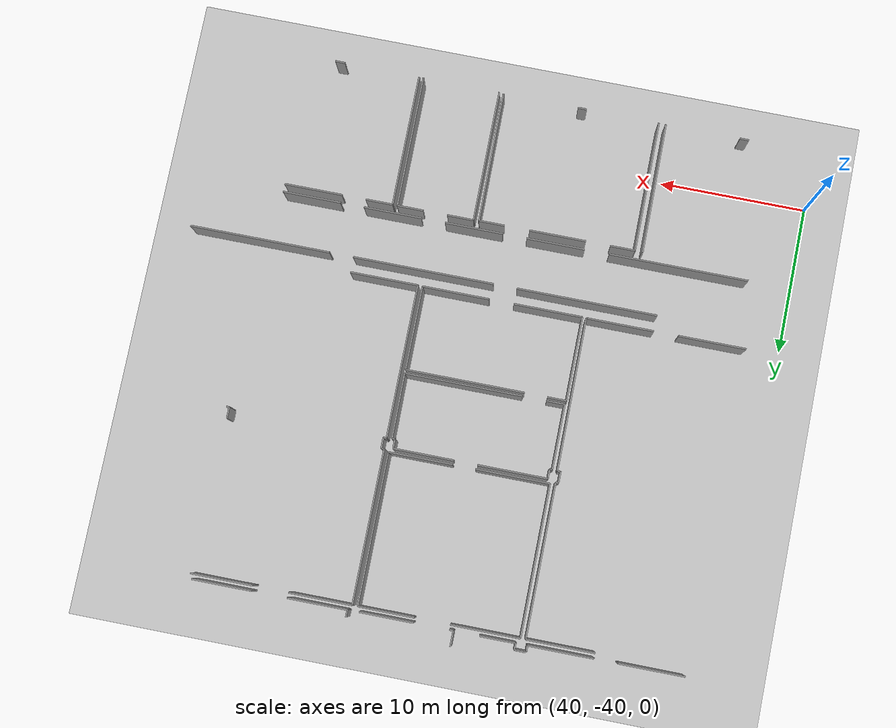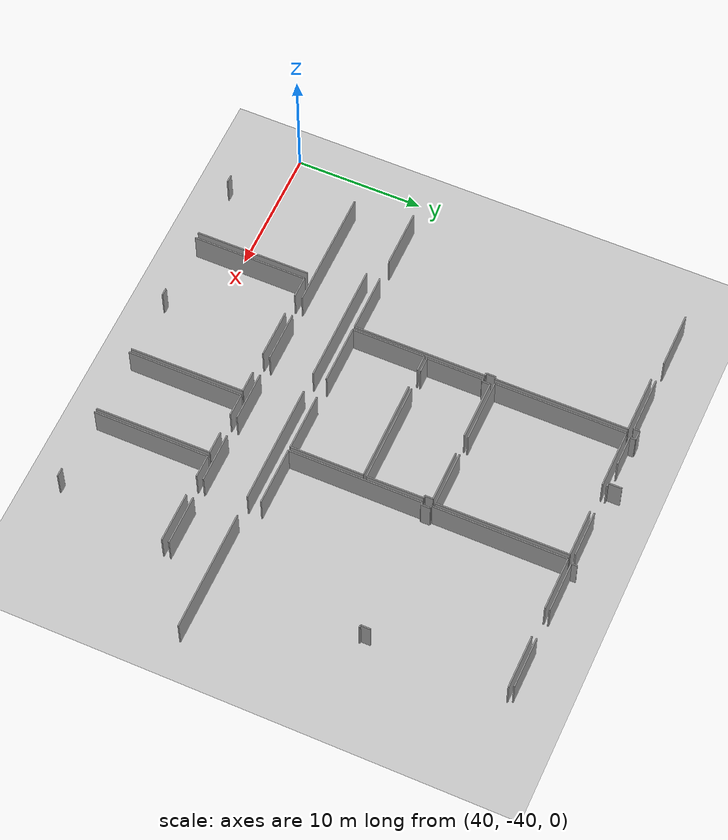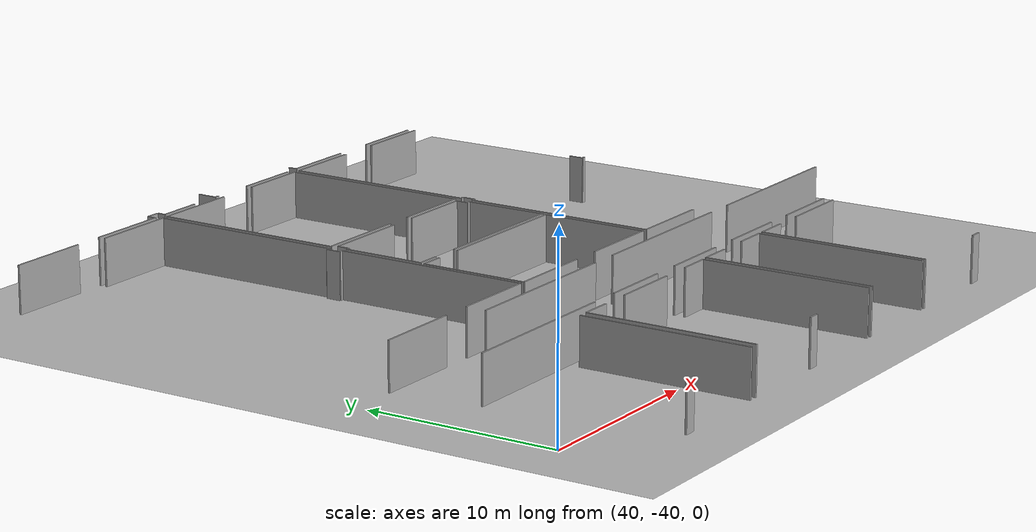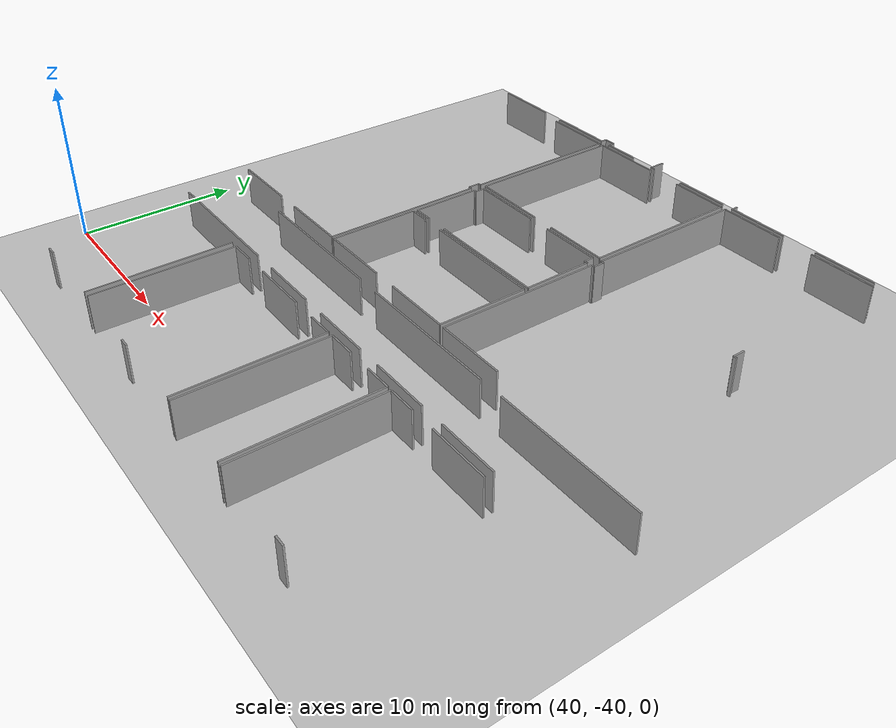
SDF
<sdf version="1.6">
 <world name="default">
  <model name="ground_plane">
   <static>1</static>
   <link name="link">
    <collision name="collision">
     <geometry><plane><normal>0 0 1</normal><size>100 100</size></plane></geometry>
     <surface><friction><ode><mu>100</mu><mu2>50</mu2></ode></friction></surface>
    </collision>
    <visual name="visual">
     <cast_shadows>0</cast_shadows>
     <geometry><plane><normal>0 0 1</normal><size>100 100</size></plane></geometry>
     <material>
      <script><uri>file://media/materials/scripts/gazebo.material</uri><name>Gazebo/Grey</name></script>
     </material>
    </visual>
   </link>
  </model>
  <model name="50015848">
   <static>1</static>
   <link name="Wall_598">
    <collision name="Wall_598_Collision">
     <geometry><box><size>4.02895038979 0.1 2.5</size></box></geometry>
     <pose>2.01447519489 0 1.25 0 0 0</pose>
    </collision>
    <visual name="Wall_598_Visual">
     <pose>2.01447519489 0 1.25 0 0 0</pose>
     <geometry><box><size>4.02895038979 0.1 2.5</size></box></geometry>
     <material>
      <script><uri>file://media/materials/scripts/gazebo.material</uri><name>Gazebo/Grey</name></script>
      <ambient>1 1 1 1</ambient>
     </material>
    </visual>
    <pose>207.334521627 -51.2421899283 0 0 0 3.14159265359</pose>
   </link>
   <link name="Wall_599">
    <collision name="Wall_599_Collision">
     <geometry><box><size>4.02057735856 0.1 2.5</size></box></geometry>
     <pose>2.01028867928 0 1.25 0 0 0</pose>
    </collision>
    <visual name="Wall_599_Visual">
     <pose>2.01028867928 0 1.25 0 0 0</pose>
     <geometry><box><size>4.02057735856 0.1 2.5</size></box></geometry>
     <material>
      <script><uri>file://media/materials/scripts/gazebo.material</uri><name>Gazebo/Grey</name></script>
      <ambient>1 1 1 1</ambient>
     </material>
    </visual>
    <pose>200.940824236 -51.2421899283 0 0 0 3.14159265359</pose>
   </link>
   <link name="Wall_600">
    <collision name="Wall_600_Collision">
     <geometry><box><size>0.468889748746 0.1 2.5</size></box></geometry>
     <pose>0.234444874373 0 1.25 0 0 0</pose>
    </collision>
    <visual name="Wall_600_Visual">
     <pose>0.234444874373 0 1.25 0 0 0</pose>
     <geometry><box><size>0.468889748746 0.1 2.5</size></box></geometry>
     <material>
      <script><uri>file://media/materials/scripts/gazebo.material</uri><name>Gazebo/Grey</name></script>
      <ambient>1 1 1 1</ambient>
     </material>
    </visual>
    <pose>196.920246878 -51.2421899283 0 0 0 1.57079632679</pose>
   </link>
   <link name="Wall_603">
    <collision name="Wall_603_Collision">
     <geometry><box><size>3.62602997799 0.1 2.5</size></box></geometry>
     <pose>1.81301498899 0 1.25 0 0 0</pose>
    </collision>
    <visual name="Wall_603_Visual">
     <pose>1.81301498899 0 1.25 0 0 0</pose>
     <geometry><box><size>3.62602997799 0.1 2.5</size></box></geometry>
     <material>
      <script><uri>file://media/materials/scripts/gazebo.material</uri><name>Gazebo/Grey</name></script>
      <ambient>1 1 1 1</ambient>
     </material>
    </visual>
    <pose>196.152719015 -51.2571598932 0 0 0 3.14159265359</pose>
   </link>
   <link name="Wall_604">
    <collision name="Wall_604_Collision">
     <geometry><box><size>0.275802574073 0.1 2.5</size></box></geometry>
     <pose>0.137901287036 0 1.25 0 0 0</pose>
    </collision>
    <visual name="Wall_604_Visual">
     <pose>0.137901287036 0 1.25 0 0 0</pose>
     <geometry><box><size>0.275802574073 0.1 2.5</size></box></geometry>
     <material>
      <script><uri>file://media/materials/scripts/gazebo.material</uri><name>Gazebo/Grey</name></script>
      <ambient>1 1 1 1</ambient>
     </material>
    </visual>
    <pose>190.141897506 -51.2571598932 0 0 0 3.14159265359</pose>
   </link>
   <link name="Wall_605">
    <collision name="Wall_605_Collision">
     <geometry><box><size>1.05474820646 0.1 2.5</size></box></geometry>
     <pose>0.527374103229 0 1.25 0 0 0</pose>
    </collision>
    <visual name="Wall_605_Visual">
     <pose>0.527374103229 0 1.25 0 0 0</pose>
     <geometry><box><size>1.05474820646 0.1 2.5</size></box></geometry>
     <material>
      <script><uri>file://media/materials/scripts/gazebo.material</uri><name>Gazebo/Grey</name></script>
      <ambient>1 1 1 1</ambient>
     </material>
    </visual>
    <pose>189.866094932 -51.2571598932 0 0 0 1.57079632679</pose>
   </link>
   <link name="Wall_608">
    <collision name="Wall_608_Collision">
     <geometry><box><size>2.4081345267 0.1 2.5</size></box></geometry>
     <pose>1.20406726335 0 1.25 0 0 0</pose>
    </collision>
    <visual name="Wall_608_Visual">
     <pose>1.20406726335 0 1.25 0 0 0</pose>
     <geometry><box><size>2.4081345267 0.1 2.5</size></box></geometry>
     <material>
      <script><uri>file://media/materials/scripts/gazebo.material</uri><name>Gazebo/Grey</name></script>
      <ambient>1 1 1 1</ambient>
     </material>
    </visual>
    <pose>188.13972813 -51.2470107644 0 0 0 3.14159265359</pose>
   </link>
   <link name="Wall_609">
    <collision name="Wall_609_Collision">
     <geometry><box><size>0.449860132319 0.1 2.5</size></box></geometry>
     <pose>0.22493006616 0 1.25 0 0 0</pose>
    </collision>
    <visual name="Wall_609_Visual">
     <pose>0.22493006616 0 1.25 0 0 0</pose>
     <geometry><box><size>0.449860132319 0.1 2.5</size></box></geometry>
     <material>
      <script><uri>file://media/materials/scripts/gazebo.material</uri><name>Gazebo/Grey</name></script>
      <ambient>1 1 1 1</ambient>
     </material>
    </visual>
    <pose>185.731593604 -51.2470107644 0 0 0 1.57079632679</pose>
   </link>
   <link name="Wall_610">
    <collision name="Wall_610_Collision">
     <geometry><box><size>0.783259012109 0.1 2.5</size></box></geometry>
     <pose>0.391629506055 0 1.25 0 0 0</pose>
    </collision>
    <visual name="Wall_610_Visual">
     <pose>0.391629506055 0 1.25 0 0 0</pose>
     <geometry><box><size>0.783259012109 0.1 2.5</size></box></geometry>
     <material>
      <script><uri>file://media/materials/scripts/gazebo.material</uri><name>Gazebo/Grey</name></script>
      <ambient>1 1 1 1</ambient>
     </material>
    </visual>
    <pose>185.731593604 -50.7971506321 0 0 0 3.14159265359</pose>
   </link>
   <link name="Wall_611">
    <collision name="Wall_611_Collision">
     <geometry><box><size>0.449860132319 0.1 2.5</size></box></geometry>
     <pose>0.22493006616 0 1.25 0 0 0</pose>
    </collision>
    <visual name="Wall_611_Visual">
     <pose>0.22493006616 0 1.25 0 0 0</pose>
     <geometry><box><size>0.449860132319 0.1 2.5</size></box></geometry>
     <material>
      <script><uri>file://media/materials/scripts/gazebo.material</uri><name>Gazebo/Grey</name></script>
      <ambient>1 1 1 1</ambient>
     </material>
    </visual>
    <pose>184.948334591 -50.7971506321 0 0 0 -1.57079632679</pose>
   </link>
   <link name="Wall_612">
    <collision name="Wall_612_Collision">
     <geometry><box><size>4.42476641146 0.1 2.5</size></box></geometry>
     <pose>2.21238320573 0 1.25 0 0 0</pose>
    </collision>
    <visual name="Wall_612_Visual">
     <pose>2.21238320573 0 1.25 0 0 0</pose>
     <geometry><box><size>4.42476641146 0.1 2.5</size></box></geometry>
     <material>
      <script><uri>file://media/materials/scripts/gazebo.material</uri><name>Gazebo/Grey</name></script>
      <ambient>1 1 1 1</ambient>
     </material>
    </visual>
    <pose>184.948334591 -51.2470107644 0 0 0 3.14159265359</pose>
   </link>
   <link name="Wall_613">
    <collision name="Wall_613_Collision">
     <geometry><box><size>4.42603505255 0.1 2.5</size></box></geometry>
     <pose>2.21301752628 0 1.25 0 0 0</pose>
    </collision>
    <visual name="Wall_613_Visual">
     <pose>2.21301752628 0 1.25 0 0 0</pose>
     <geometry><box><size>4.42603505255 0.1 2.5</size></box></geometry>
     <material>
      <script><uri>file://media/materials/scripts/gazebo.material</uri><name>Gazebo/Grey</name></script>
      <ambient>1 1 1 1</ambient>
     </material>
    </visual>
    <pose>178.931423606 -51.2470107644 0 0 0 3.14159265359</pose>
   </link>
   <link name="Wall_1284">
    <collision name="Wall_1284_Collision">
     <geometry><box><size>4.62368933517 0.1 2.5</size></box></geometry>
     <pose>2.31184466758 0 1.25 0 0 0</pose>
    </collision>
    <visual name="Wall_1284_Visual">
     <pose>2.31184466758 0 1.25 0 0 0</pose>
     <geometry><box><size>4.62368933517 0.1 2.5</size></box></geometry>
     <material>
      <script><uri>file://media/materials/scripts/gazebo.material</uri><name>Gazebo/Grey</name></script>
      <ambient>1 1 1 1</ambient>
     </material>
    </visual>
    <pose>201.291222907 -73.1912032426 0 0 0 3.14159265359</pose>
   </link>
   <link name="Wall_1285">
    <collision name="Wall_1285_Collision">
     <geometry><box><size>10.4546175364 0.1 2.5</size></box></geometry>
     <pose>5.22730876821 0 1.25 0 0 0</pose>
    </collision>
    <visual name="Wall_1285_Visual">
     <pose>5.22730876821 0 1.25 0 0 0</pose>
     <geometry><box><size>10.4546175364 0.1 2.5</size></box></geometry>
     <material>
      <script><uri>file://media/materials/scripts/gazebo.material</uri><name>Gazebo/Grey</name></script>
      <ambient>1 1 1 1</ambient>
     </material>
    </visual>
    <pose>196.667533571 -73.1912032426 0 0 0 1.57079632679</pose>
   </link>
   <link name="Wall_1286">
    <collision name="Wall_1286_Collision">
     <geometry><box><size>0.205519857405 0.1 2.5</size></box></geometry>
     <pose>0.102759928702 0 1.25 0 0 0</pose>
    </collision>
    <visual name="Wall_1286_Visual">
     <pose>0.102759928702 0 1.25 0 0 0</pose>
     <geometry><box><size>0.205519857405 0.1 2.5</size></box></geometry>
     <material>
      <script><uri>file://media/materials/scripts/gazebo.material</uri><name>Gazebo/Grey</name></script>
      <ambient>1 1 1 1</ambient>
     </material>
    </visual>
    <pose>196.667533571 -62.7365857062 0 0 0 0.0</pose>
   </link>
   <link name="Wall_1287">
    <collision name="Wall_1287_Collision">
     <geometry><box><size>0.725408978173 0.1 2.5</size></box></geometry>
     <pose>0.362704489087 0 1.25 0 0 0</pose>
    </collision>
    <visual name="Wall_1287_Visual">
     <pose>0.362704489087 0 1.25 0 0 0</pose>
     <geometry><box><size>0.725408978173 0.1 2.5</size></box></geometry>
     <material>
      <script><uri>file://media/materials/scripts/gazebo.material</uri><name>Gazebo/Grey</name></script>
      <ambient>1 1 1 1</ambient>
     </material>
    </visual>
    <pose>196.873053429 -62.7365857062 0 0 0 1.57079632679</pose>
   </link>
   <link name="Wall_1288">
    <collision name="Wall_1288_Collision">
     <geometry><box><size>0.203236303434 0.1 2.5</size></box></geometry>
     <pose>0.101618151717 0 1.25 0 0 0</pose>
    </collision>
    <visual name="Wall_1288_Visual">
     <pose>0.101618151717 0 1.25 0 0 0</pose>
     <geometry><box><size>0.203236303434 0.1 2.5</size></box></geometry>
     <material>
      <script><uri>file://media/materials/scripts/gazebo.material</uri><name>Gazebo/Grey</name></script>
      <ambient>1 1 1 1</ambient>
     </material>
    </visual>
    <pose>196.873053429 -62.011176728 0 0 0 3.14159265359</pose>
   </link>
   <link name="Wall_1289">
    <collision name="Wall_1289_Collision">
     <geometry><box><size>10.4160508471 0.1 2.5</size></box></geometry>
     <pose>5.20802542357 0 1.25 0 0 0</pose>
    </collision>
    <visual name="Wall_1289_Visual">
     <pose>5.20802542357 0 1.25 0 0 0</pose>
     <geometry><box><size>10.4160508471 0.1 2.5</size></box></geometry>
     <material>
      <script><uri>file://media/materials/scripts/gazebo.material</uri><name>Gazebo/Grey</name></script>
      <ambient>1 1 1 1</ambient>
     </material>
    </visual>
    <pose>196.669817125 -62.011176728 0 0 0 1.57079632679</pose>
   </link>
   <link name="Wall_1290">
    <collision name="Wall_1290_Collision">
     <geometry><box><size>4.25070885321 0.1 2.5</size></box></geometry>
     <pose>2.12535442661 0 1.25 0 0 0</pose>
    </collision>
    <visual name="Wall_1290_Visual">
     <pose>2.12535442661 0 1.25 0 0 0</pose>
     <geometry><box><size>4.25070885321 0.1 2.5</size></box></geometry>
     <material>
      <script><uri>file://media/materials/scripts/gazebo.material</uri><name>Gazebo/Grey</name></script>
      <ambient>1 1 1 1</ambient>
     </material>
    </visual>
    <pose>196.669817125 -51.5951258809 0 0 0 0.0</pose>
   </link>
   <link name="Wall_1291">
    <collision name="Wall_1291_Collision">
     <geometry><box><size>4.21417198967 0.1 2.5</size></box></geometry>
     <pose>2.10708599484 0 1.25 0 0 0</pose>
    </collision>
    <visual name="Wall_1291_Visual">
     <pose>2.10708599484 0 1.25 0 0 0</pose>
     <geometry><box><size>4.21417198967 0.1 2.5</size></box></geometry>
     <material>
      <script><uri>file://media/materials/scripts/gazebo.material</uri><name>Gazebo/Grey</name></script>
      <ambient>1 1 1 1</ambient>
     </material>
    </visual>
    <pose>203.297959391 -51.5951258809 0 0 0 0.0</pose>
   </link>
   <link name="Wall_1294">
    <collision name="Wall_1294_Collision">
     <geometry><box><size>0.77539343732 0.1 2.5</size></box></geometry>
     <pose>0.38769671866 0 1.25 0 0 0</pose>
    </collision>
    <visual name="Wall_1294_Visual">
     <pose>0.38769671866 0 1.25 0 0 0</pose>
     <geometry><box><size>0.77539343732 0.1 2.5</size></box></geometry>
     <material>
      <script><uri>file://media/materials/scripts/gazebo.material</uri><name>Gazebo/Grey</name></script>
      <ambient>1 1 1 1</ambient>
     </material>
    </visual>
    <pose>207.313715913 -61.976415962 0 0 0 -1.57079632679</pose>
   </link>
   <link name="Wall_1295">
    <collision name="Wall_1295_Collision">
     <geometry><box><size>0.200191564805 0.1 2.5</size></box></geometry>
     <pose>0.100095782403 0 1.25 0 0 0</pose>
    </collision>
    <visual name="Wall_1295_Visual">
     <pose>0.100095782403 0 1.25 0 0 0</pose>
     <geometry><box><size>0.200191564805 0.1 2.5</size></box></geometry>
     <material>
      <script><uri>file://media/materials/scripts/gazebo.material</uri><name>Gazebo/Grey</name></script>
      <ambient>1 1 1 1</ambient>
     </material>
    </visual>
    <pose>207.313715913 -62.7518093994 0 0 0 0.0</pose>
   </link>
   <link name="Wall_1307">
    <collision name="Wall_1307_Collision">
     <geometry><box><size>4.34509575069 0.1 2.5</size></box></geometry>
     <pose>2.17254787534 0 1.25 0 0 0</pose>
    </collision>
    <visual name="Wall_1307_Visual">
     <pose>2.17254787534 0 1.25 0 0 0</pose>
     <geometry><box><size>4.34509575069 0.1 2.5</size></box></geometry>
     <material>
      <script><uri>file://media/materials/scripts/gazebo.material</uri><name>Gazebo/Grey</name></script>
      <ambient>1 1 1 1</ambient>
     </material>
    </visual>
    <pose>196.360522426 -61.8515816783 0 0 0 3.14159265359</pose>
   </link>
   <link name="Wall_1308">
    <collision name="Wall_1308_Collision">
     <geometry><box><size>5.00504284835 0.1 2.5</size></box></geometry>
     <pose>2.50252142418 0 1.25 0 0 0</pose>
    </collision>
    <visual name="Wall_1308_Visual">
     <pose>2.50252142418 0 1.25 0 0 0</pose>
     <geometry><box><size>5.00504284835 0.1 2.5</size></box></geometry>
     <material>
      <script><uri>file://media/materials/scripts/gazebo.material</uri><name>Gazebo/Grey</name></script>
      <ambient>1 1 1 1</ambient>
     </material>
    </visual>
    <pose>190.490012623 -61.8515816783 0 0 0 3.14159265359</pose>
   </link>
   <link name="Wall_1309">
    <collision name="Wall_1309_Collision">
     <geometry><box><size>10.2564557974 0.1 2.5</size></box></geometry>
     <pose>5.12822789869 0 1.25 0 0 0</pose>
    </collision>
    <visual name="Wall_1309_Visual">
     <pose>5.12822789869 0 1.25 0 0 0</pose>
     <geometry><box><size>10.2564557974 0.1 2.5</size></box></geometry>
     <material>
      <script><uri>file://media/materials/scripts/gazebo.material</uri><name>Gazebo/Grey</name></script>
      <ambient>1 1 1 1</ambient>
     </material>
    </visual>
    <pose>185.484969775 -61.8515816783 0 0 0 1.57079632679</pose>
   </link>
   <link name="Wall_1310">
    <collision name="Wall_1310_Collision">
     <geometry><box><size>4.65692773186 0.1 2.5</size></box></geometry>
     <pose>2.32846386593 0 1.25 0 0 0</pose>
    </collision>
    <visual name="Wall_1310_Visual">
     <pose>2.32846386593 0 1.25 0 0 0</pose>
     <geometry><box><size>4.65692773186 0.1 2.5</size></box></geometry>
     <material>
      <script><uri>file://media/materials/scripts/gazebo.material</uri><name>Gazebo/Grey</name></script>
      <ambient>1 1 1 1</ambient>
     </material>
    </visual>
    <pose>185.484969775 -51.5951258809 0 0 0 0.0</pose>
   </link>
   <link name="Wall_1311">
    <collision name="Wall_1311_Collision">
     <geometry><box><size>3.78638621241 0.1 2.5</size></box></geometry>
     <pose>1.8931931062 0 1.25 0 0 0</pose>
    </collision>
    <visual name="Wall_1311_Visual">
     <pose>1.8931931062 0 1.25 0 0 0</pose>
     <geometry><box><size>3.78638621241 0.1 2.5</size></box></geometry>
     <material>
      <script><uri>file://media/materials/scripts/gazebo.material</uri><name>Gazebo/Grey</name></script>
      <ambient>1 1 1 1</ambient>
     </material>
    </visual>
    <pose>192.520853288 -51.5951258809 0 0 0 0.0</pose>
   </link>
   <link name="Wall_1312">
    <collision name="Wall_1312_Collision">
     <geometry><box><size>10.2565942005 0.1 2.5</size></box></geometry>
     <pose>5.12829710025 0 1.25 0 0 0</pose>
    </collision>
    <visual name="Wall_1312_Visual">
     <pose>5.12829710025 0 1.25 0 0 0</pose>
     <geometry><box><size>10.2565942005 0.1 2.5</size></box></geometry>
     <material>
      <script><uri>file://media/materials/scripts/gazebo.material</uri><name>Gazebo/Grey</name></script>
      <ambient>1 1 1 1</ambient>
     </material>
    </visual>
    <pose>196.3072395 -51.5951258809 0 0 0 -1.56560131131</pose>
   </link>
   <link name="Wall_1313">
    <collision name="Wall_1313_Collision">
     <geometry><box><size>7.99396126839 0.1 2.5</size></box></geometry>
     <pose>3.99698063419 0 1.25 0 0 0</pose>
    </collision>
    <visual name="Wall_1313_Visual">
     <pose>3.99698063419 0 1.25 0 0 0</pose>
     <geometry><box><size>7.99396126839 0.1 2.5</size></box></geometry>
     <material>
      <script><uri>file://media/materials/scripts/gazebo.material</uri><name>Gazebo/Grey</name></script>
      <ambient>1 1 1 1</ambient>
     </material>
    </visual>
    <pose>196.35570159 -67.2032172738 0 0 0 3.14159265359</pose>
   </link>
   <link name="Wall_1314">
    <collision name="Wall_1314_Collision">
     <geometry><box><size>1.23616388306 0.1 2.5</size></box></geometry>
     <pose>0.618081941528 0 1.25 0 0 0</pose>
    </collision>
    <visual name="Wall_1314_Visual">
     <pose>0.618081941528 0 1.25 0 0 0</pose>
     <geometry><box><size>1.23616388306 0.1 2.5</size></box></geometry>
     <material>
      <script><uri>file://media/materials/scripts/gazebo.material</uri><name>Gazebo/Grey</name></script>
      <ambient>1 1 1 1</ambient>
     </material>
    </visual>
    <pose>186.749043762 -67.2032172738 0 0 0 3.14159265359</pose>
   </link>
   <link name="Wall_1315">
    <collision name="Wall_1315_Collision">
     <geometry><box><size>4.42273658571 0.1 2.5</size></box></geometry>
     <pose>2.21136829285 0 1.25 0 0 0</pose>
    </collision>
    <visual name="Wall_1315_Visual">
     <pose>2.21136829285 0 1.25 0 0 0</pose>
     <geometry><box><size>4.42273658571 0.1 2.5</size></box></geometry>
     <material>
      <script><uri>file://media/materials/scripts/gazebo.material</uri><name>Gazebo/Grey</name></script>
      <ambient>1 1 1 1</ambient>
     </material>
    </visual>
    <pose>185.512879879 -67.2032172738 0 0 0 1.57079632679</pose>
   </link>
   <link name="Wall_1316">
    <collision name="Wall_1316_Collision">
     <geometry><box><size>0.177102296875 0.1 2.5</size></box></geometry>
     <pose>0.0885511484373 0 1.25 0 0 0</pose>
    </collision>
    <visual name="Wall_1316_Visual">
     <pose>0.0885511484373 0 1.25 0 0 0</pose>
     <geometry><box><size>0.177102296875 0.1 2.5</size></box></geometry>
     <material>
      <script><uri>file://media/materials/scripts/gazebo.material</uri><name>Gazebo/Grey</name></script>
      <ambient>1 1 1 1</ambient>
     </material>
    </visual>
    <pose>185.512879879 -62.7804806881 0 0 0 0.0</pose>
   </link>
   <link name="Wall_1317">
    <collision name="Wall_1317_Collision">
     <geometry><box><size>0.638633927269 0.1 2.5</size></box></geometry>
     <pose>0.319316963634 0 1.25 0 0 0</pose>
    </collision>
    <visual name="Wall_1317_Visual">
     <pose>0.319316963634 0 1.25 0 0 0</pose>
     <geometry><box><size>0.638633927269 0.1 2.5</size></box></geometry>
     <material>
      <script><uri>file://media/materials/scripts/gazebo.material</uri><name>Gazebo/Grey</name></script>
      <ambient>1 1 1 1</ambient>
     </material>
    </visual>
    <pose>185.689982176 -62.7804806881 0 0 0 1.57079632679</pose>
   </link>
   <link name="Wall_1318">
    <collision name="Wall_1318_Collision">
     <geometry><box><size>4.72797163319 0.1 2.5</size></box></geometry>
     <pose>2.36398581659 0 1.25 0 0 0</pose>
    </collision>
    <visual name="Wall_1318_Visual">
     <pose>2.36398581659 0 1.25 0 0 0</pose>
     <geometry><box><size>4.72797163319 0.1 2.5</size></box></geometry>
     <material>
      <script><uri>file://media/materials/scripts/gazebo.material</uri><name>Gazebo/Grey</name></script>
      <ambient>1 1 1 1</ambient>
     </material>
    </visual>
    <pose>185.689982176 -62.1418467608 0 0 0 0.0</pose>
   </link>
   <link name="Wall_1319">
    <collision name="Wall_1319_Collision">
     <geometry><box><size>4.09111380345 0.1 2.5</size></box></geometry>
     <pose>2.04555690172 0 1.25 0 0 0</pose>
    </collision>
    <visual name="Wall_1319_Visual">
     <pose>2.04555690172 0 1.25 0 0 0</pose>
     <geometry><box><size>4.09111380345 0.1 2.5</size></box></geometry>
     <material>
      <script><uri>file://media/materials/scripts/gazebo.material</uri><name>Gazebo/Grey</name></script>
      <ambient>1 1 1 1</ambient>
     </material>
    </visual>
    <pose>192.013143122 -62.1418467608 0 0 0 0.0</pose>
   </link>
   <link name="Wall_1320">
    <collision name="Wall_1320_Collision">
     <geometry><box><size>0.638126470831 0.1 2.5</size></box></geometry>
     <pose>0.319063235415 0 1.25 0 0 0</pose>
    </collision>
    <visual name="Wall_1320_Visual">
     <pose>0.319063235415 0 1.25 0 0 0</pose>
     <geometry><box><size>0.638126470831 0.1 2.5</size></box></geometry>
     <material>
      <script><uri>file://media/materials/scripts/gazebo.material</uri><name>Gazebo/Grey</name></script>
      <ambient>1 1 1 1</ambient>
     </material>
    </visual>
    <pose>196.104256925 -62.1418467608 0 0 0 -1.57079632679</pose>
   </link>
   <link name="Wall_1321">
    <collision name="Wall_1321_Collision">
     <geometry><box><size>0.202982575215 0.1 2.5</size></box></geometry>
     <pose>0.101491287607 0 1.25 0 0 0</pose>
    </collision>
    <visual name="Wall_1321_Visual">
     <pose>0.101491287607 0 1.25 0 0 0</pose>
     <geometry><box><size>0.202982575215 0.1 2.5</size></box></geometry>
     <material>
      <script><uri>file://media/materials/scripts/gazebo.material</uri><name>Gazebo/Grey</name></script>
      <ambient>1 1 1 1</ambient>
     </material>
    </visual>
    <pose>196.104256925 -62.7799732317 0 0 0 0.0</pose>
   </link>
   <link name="Wall_1322">
    <collision name="Wall_1322_Collision">
     <geometry><box><size>4.42350951514 0.1 2.5</size></box></geometry>
     <pose>2.21175475757 0 1.25 0 0 0</pose>
    </collision>
    <visual name="Wall_1322_Visual">
     <pose>2.21175475757 0 1.25 0 0 0</pose>
     <geometry><box><size>4.42350951514 0.1 2.5</size></box></geometry>
     <material>
      <script><uri>file://media/materials/scripts/gazebo.material</uri><name>Gazebo/Grey</name></script>
      <ambient>1 1 1 1</ambient>
     </material>
    </visual>
    <pose>196.3072395 -62.7799732317 0 0 0 -1.55984053272</pose>
   </link>
   <link name="Wall_1323">
    <collision name="Wall_1323_Collision">
     <geometry><box><size>4.55264543384 0.1 2.5</size></box></geometry>
     <pose>2.27632271692 0 1.25 0 0 0</pose>
    </collision>
    <visual name="Wall_1323_Visual">
     <pose>2.27632271692 0 1.25 0 0 0</pose>
     <geometry><box><size>4.55264543384 0.1 2.5</size></box></geometry>
     <material>
      <script><uri>file://media/materials/scripts/gazebo.material</uri><name>Gazebo/Grey</name></script>
      <ambient>1 1 1 1</ambient>
     </material>
    </visual>
    <pose>196.348089744 -73.1767407342 0 0 0 3.14159265359</pose>
   </link>
   <link name="Wall_1324">
    <collision name="Wall_1324_Collision">
     <geometry><box><size>4.68128564089 0.1 2.5</size></box></geometry>
     <pose>2.34064282044 0 1.25 0 0 0</pose>
    </collision>
    <visual name="Wall_1324_Visual">
     <pose>2.34064282044 0 1.25 0 0 0</pose>
     <geometry><box><size>4.68128564089 0.1 2.5</size></box></geometry>
     <material>
      <script><uri>file://media/materials/scripts/gazebo.material</uri><name>Gazebo/Grey</name></script>
      <ambient>1 1 1 1</ambient>
     </material>
    </visual>
    <pose>190.125151444 -73.1767407342 0 0 0 3.14159265359</pose>
   </link>
   <link name="Wall_1325">
    <collision name="Wall_1325_Collision">
     <geometry><box><size>5.72816827255 0.1 2.5</size></box></geometry>
     <pose>2.86408413628 0 1.25 0 0 0</pose>
    </collision>
    <visual name="Wall_1325_Visual">
     <pose>2.86408413628 0 1.25 0 0 0</pose>
     <geometry><box><size>5.72816827255 0.1 2.5</size></box></geometry>
     <material>
      <script><uri>file://media/materials/scripts/gazebo.material</uri><name>Gazebo/Grey</name></script>
      <ambient>1 1 1 1</ambient>
     </material>
    </visual>
    <pose>185.443865803 -73.1767407342 0 0 0 1.57079632679</pose>
   </link>
   <link name="Wall_1326">
    <collision name="Wall_1326_Collision">
     <geometry><box><size>1.28767071152 0.1 2.5</size></box></geometry>
     <pose>0.643835355759 0 1.25 0 0 0</pose>
    </collision>
    <visual name="Wall_1326_Visual">
     <pose>0.643835355759 0 1.25 0 0 0</pose>
     <geometry><box><size>1.28767071152 0.1 2.5</size></box></geometry>
     <material>
      <script><uri>file://media/materials/scripts/gazebo.material</uri><name>Gazebo/Grey</name></script>
      <ambient>1 1 1 1</ambient>
     </material>
    </visual>
    <pose>185.443865803 -67.4485724616 0 0 0 0.0</pose>
   </link>
   <link name="Wall_1327">
    <collision name="Wall_1327_Collision">
     <geometry><box><size>8.04825910726 0.1 2.5</size></box></geometry>
     <pose>4.02412955363 0 1.25 0 0 0</pose>
    </collision>
    <visual name="Wall_1327_Visual">
     <pose>4.02412955363 0 1.25 0 0 0</pose>
     <geometry><box><size>8.04825910726 0.1 2.5</size></box></geometry>
     <material>
      <script><uri>file://media/materials/scripts/gazebo.material</uri><name>Gazebo/Grey</name></script>
      <ambient>1 1 1 1</ambient>
     </material>
    </visual>
    <pose>188.28790541 -67.4485724616 0 0 0 0.0</pose>
   </link>
   <link name="Wall_1328">
    <collision name="Wall_1328_Collision">
     <geometry><box><size>5.72818068585 0.1 2.5</size></box></geometry>
     <pose>2.86409034292 0 1.25 0 0 0</pose>
    </collision>
    <visual name="Wall_1328_Visual">
     <pose>2.86409034292 0 1.25 0 0 0</pose>
     <geometry><box><size>5.72818068585 0.1 2.5</size></box></geometry>
     <material>
      <script><uri>file://media/materials/scripts/gazebo.material</uri><name>Gazebo/Grey</name></script>
      <ambient>1 1 1 1</ambient>
     </material>
    </visual>
    <pose>196.336164517 -67.4485724616 0 0 0 -1.56871447296</pose>
   </link>
   <link name="Wall_1329">
    <collision name="Wall_1329_Collision">
     <geometry><box><size>4.60440599052 0.1 2.5</size></box></geometry>
     <pose>2.30220299526 0 1.25 0 0 0</pose>
    </collision>
    <visual name="Wall_1329_Visual">
     <pose>2.30220299526 0 1.25 0 0 0</pose>
     <geometry><box><size>4.60440599052 0.1 2.5</size></box></geometry>
     <material>
      <script><uri>file://media/materials/scripts/gazebo.material</uri><name>Gazebo/Grey</name></script>
      <ambient>1 1 1 1</ambient>
     </material>
    </visual>
    <pose>185.184809292 -73.1612633128 0 0 0 3.14159265359</pose>
   </link>
   <link name="Wall_1330">
    <collision name="Wall_1330_Collision">
     <geometry><box><size>4.59171957957 0.1 2.5</size></box></geometry>
     <pose>2.29585978979 0 1.25 0 0 0</pose>
    </collision>
    <visual name="Wall_1330_Visual">
     <pose>2.29585978979 0 1.25 0 0 0</pose>
     <geometry><box><size>4.59171957957 0.1 2.5</size></box></geometry>
     <material>
      <script><uri>file://media/materials/scripts/gazebo.material</uri><name>Gazebo/Grey</name></script>
      <ambient>1 1 1 1</ambient>
     </material>
    </visual>
    <pose>178.915185 -73.1612633128 0 0 0 3.14159265359</pose>
   </link>
   <link name="Wall_1337">
    <collision name="Wall_1337_Collision">
     <geometry><box><size>4.5988239697 0.1 2.5</size></box></geometry>
     <pose>2.29941198485 0 1.25 0 0 0</pose>
    </collision>
    <visual name="Wall_1337_Visual">
     <pose>2.29941198485 0 1.25 0 0 0</pose>
     <geometry><box><size>4.5988239697 0.1 2.5</size></box></geometry>
     <material>
      <script><uri>file://media/materials/scripts/gazebo.material</uri><name>Gazebo/Grey</name></script>
      <ambient>1 1 1 1</ambient>
     </material>
    </visual>
    <pose>180.538030688 -51.6078122919 0 0 0 0.0</pose>
   </link>
   <link name="Wall_1338">
    <collision name="Wall_1338_Collision">
     <geometry><box><size>10.3889019277 0.1 2.5</size></box></geometry>
     <pose>5.19445096385 0 1.25 0 0 0</pose>
    </collision>
    <visual name="Wall_1338_Visual">
     <pose>5.19445096385 0 1.25 0 0 0</pose>
     <geometry><box><size>10.3889019277 0.1 2.5</size></box></geometry>
     <material>
      <script><uri>file://media/materials/scripts/gazebo.material</uri><name>Gazebo/Grey</name></script>
      <ambient>1 1 1 1</ambient>
     </material>
    </visual>
    <pose>185.136854658 -51.6078122919 0 0 0 -1.57079632679</pose>
   </link>
   <link name="Wall_1339">
    <collision name="Wall_1339_Collision">
     <geometry><box><size>0.188520066731 0.1 2.5</size></box></geometry>
     <pose>0.0942600333653 0 1.25 0 0 0</pose>
    </collision>
    <visual name="Wall_1339_Visual">
     <pose>0.0942600333653 0 1.25 0 0 0</pose>
     <geometry><box><size>0.188520066731 0.1 2.5</size></box></geometry>
     <material>
      <script><uri>file://media/materials/scripts/gazebo.material</uri><name>Gazebo/Grey</name></script>
      <ambient>1 1 1 1</ambient>
     </material>
    </visual>
    <pose>185.136854658 -61.9967142196 0 0 0 3.14159265359</pose>
   </link>
   <link name="Wall_1340">
    <collision name="Wall_1340_Collision">
     <geometry><box><size>0.768796503625 0.1 2.5</size></box></geometry>
     <pose>0.384398251813 0 1.25 0 0 0</pose>
    </collision>
    <visual name="Wall_1340_Visual">
     <pose>0.384398251813 0 1.25 0 0 0</pose>
     <geometry><box><size>0.768796503625 0.1 2.5</size></box></geometry>
     <material>
      <script><uri>file://media/materials/scripts/gazebo.material</uri><name>Gazebo/Grey</name></script>
      <ambient>1 1 1 1</ambient>
     </material>
    </visual>
    <pose>184.948334591 -61.9967142196 0 0 0 -1.57079632679</pose>
   </link>
   <link name="Wall_1341">
    <collision name="Wall_1341_Collision">
     <geometry><box><size>0.217445083699 0.1 2.5</size></box></geometry>
     <pose>0.108722541849 0 1.25 0 0 0</pose>
    </collision>
    <visual name="Wall_1341_Visual">
     <pose>0.108722541849 0 1.25 0 0 0</pose>
     <geometry><box><size>0.217445083699 0.1 2.5</size></box></geometry>
     <material>
      <script><uri>file://media/materials/scripts/gazebo.material</uri><name>Gazebo/Grey</name></script>
      <ambient>1 1 1 1</ambient>
     </material>
    </visual>
    <pose>184.948334591 -62.7655107232 0 0 0 0.0</pose>
   </link>
   <link name="Wall_1342">
    <collision name="Wall_1342_Collision">
     <geometry><box><size>10.3957700066 0.1 2.5</size></box></geometry>
     <pose>5.19788500332 0 1.25 0 0 0</pose>
    </collision>
    <visual name="Wall_1342_Visual">
     <pose>5.19788500332 0 1.25 0 0 0</pose>
     <geometry><box><size>10.3957700066 0.1 2.5</size></box></geometry>
     <material>
      <script><uri>file://media/materials/scripts/gazebo.material</uri><name>Gazebo/Grey</name></script>
      <ambient>1 1 1 1</ambient>
     </material>
    </visual>
    <pose>185.165779675 -62.7655107232 0 0 0 -1.56896581044</pose>
   </link>
   <link name="Wall_1480">
    <collision name="Wall_1480_Collision">
     <geometry><box><size>9.56555385699 0.1 2.5</size></box></geometry>
     <pose>4.78277692849 0 1.25 0 0 0</pose>
    </collision>
    <visual name="Wall_1480_Visual">
     <pose>4.78277692849 0 1.25 0 0 0</pose>
     <geometry><box><size>9.56555385699 0.1 2.5</size></box></geometry>
     <material>
      <script><uri>file://media/materials/scripts/gazebo.material</uri><name>Gazebo/Grey</name></script>
      <ambient>1 1 1 1</ambient>
     </material>
    </visual>
    <pose>180.548433545 -74.2462051773 0 0 0 0.0</pose>
   </link>
   <link name="Wall_1481">
    <collision name="Wall_1481_Collision">
     <geometry><box><size>9.59270277642 0.1 2.5</size></box></geometry>
     <pose>4.79635138821 0 1.25 0 0 0</pose>
    </collision>
    <visual name="Wall_1481_Visual">
     <pose>4.79635138821 0 1.25 0 0 0</pose>
     <geometry><box><size>9.59270277642 0.1 2.5</size></box></geometry>
     <material>
      <script><uri>file://media/materials/scripts/gazebo.material</uri><name>Gazebo/Grey</name></script>
      <ambient>1 1 1 1</ambient>
     </material>
    </visual>
    <pose>191.717549747 -74.2462051773 0 0 0 0.0</pose>
   </link>
   <link name="Wall_1482">
    <collision name="Wall_1482_Collision">
     <geometry><box><size>9.56276284658 0.1 2.5</size></box></geometry>
     <pose>4.78138142329 0 1.25 0 0 0</pose>
    </collision>
    <visual name="Wall_1482_Visual">
     <pose>4.78138142329 0 1.25 0 0 0</pose>
     <geometry><box><size>9.56276284658 0.1 2.5</size></box></geometry>
     <material>
      <script><uri>file://media/materials/scripts/gazebo.material</uri><name>Gazebo/Grey</name></script>
      <ambient>1 1 1 1</ambient>
     </material>
    </visual>
    <pose>202.935128038 -74.2462051773 0 0 0 0.0</pose>
   </link>
   <link name="Wall_1493">
    <collision name="Wall_1493_Collision">
     <geometry><box><size>3.95486174984 0.1 2.5</size></box></geometry>
     <pose>1.97743087492 0 1.25 0 0 0</pose>
    </collision>
    <visual name="Wall_1493_Visual">
     <pose>1.97743087492 0 1.25 0 0 0</pose>
     <geometry><box><size>3.95486174984 0.1 2.5</size></box></geometry>
     <material>
      <script><uri>file://media/materials/scripts/gazebo.material</uri><name>Gazebo/Grey</name></script>
      <ambient>1 1 1 1</ambient>
     </material>
    </visual>
    <pose>206.863348324 -77.7331920913 0 0 0 3.14159265359</pose>
   </link>
   <link name="Wall_1494">
    <collision name="Wall_1494_Collision">
     <geometry><box><size>3.9490260008 0.1 2.5</size></box></geometry>
     <pose>1.9745130004 0 1.25 0 0 0</pose>
    </collision>
    <visual name="Wall_1494_Visual">
     <pose>1.9745130004 0 1.25 0 0 0</pose>
     <geometry><box><size>3.9490260008 0.1 2.5</size></box></geometry>
     <material>
      <script><uri>file://media/materials/scripts/gazebo.material</uri><name>Gazebo/Grey</name></script>
      <ambient>1 1 1 1</ambient>
     </material>
    </visual>
    <pose>201.28792444 -77.7331920913 0 0 0 3.14159265359</pose>
   </link>
   <link name="Wall_1495">
    <collision name="Wall_1495_Collision">
     <geometry><box><size>3.94826481614 0.1 2.5</size></box></geometry>
     <pose>1.97413240807 0 1.25 0 0 0</pose>
    </collision>
    <visual name="Wall_1495_Visual">
     <pose>1.97413240807 0 1.25 0 0 0</pose>
     <geometry><box><size>3.94826481614 0.1 2.5</size></box></geometry>
     <material>
      <script><uri>file://media/materials/scripts/gazebo.material</uri><name>Gazebo/Grey</name></script>
      <ambient>1 1 1 1</ambient>
     </material>
    </visual>
    <pose>195.705396165 -77.7331920913 0 0 0 3.14159265359</pose>
   </link>
   <link name="Wall_1496">
    <collision name="Wall_1496_Collision">
     <geometry><box><size>3.97490627914 0.1 2.5</size></box></geometry>
     <pose>1.98745313957 0 1.25 0 0 0</pose>
    </collision>
    <visual name="Wall_1496_Visual">
     <pose>1.98745313957 0 1.25 0 0 0</pose>
     <geometry><box><size>3.97490627914 0.1 2.5</size></box></geometry>
     <material>
      <script><uri>file://media/materials/scripts/gazebo.material</uri><name>Gazebo/Grey</name></script>
      <ambient>1 1 1 1</ambient>
     </material>
    </visual>
    <pose>190.12718127 -77.7331920913 0 0 0 3.14159265359</pose>
   </link>
   <link name="Wall_1497">
    <collision name="Wall_1497_Collision">
     <geometry><box><size>9.48715183731 0.1 2.5</size></box></geometry>
     <pose>4.74357591865 0 1.25 0 0 0</pose>
    </collision>
    <visual name="Wall_1497_Visual">
     <pose>4.74357591865 0 1.25 0 0 0</pose>
     <geometry><box><size>9.48715183731 0.1 2.5</size></box></geometry>
     <material>
      <script><uri>file://media/materials/scripts/gazebo.material</uri><name>Gazebo/Grey</name></script>
      <ambient>1 1 1 1</ambient>
     </material>
    </visual>
    <pose>184.477922473 -77.7331920913 0 0 0 3.14159265359</pose>
   </link>
   <link name="Wall_1585">
    <collision name="Wall_1585_Collision">
     <geometry><box><size>0.623663962347 0.1 2.5</size></box></geometry>
     <pose>0.311831981173 0 1.25 0 0 0</pose>
    </collision>
    <visual name="Wall_1585_Visual">
     <pose>0.311831981173 0 1.25 0 0 0</pose>
     <geometry><box><size>0.623663962347 0.1 2.5</size></box></geometry>
     <material>
      <script><uri>file://media/materials/scripts/gazebo.material</uri><name>Gazebo/Grey</name></script>
      <ambient>1 1 1 1</ambient>
     </material>
    </visual>
    <pose>177.230429625 -87.2723582135 0 0 0 3.14159265359</pose>
   </link>
   <link name="Wall_1589">
    <collision name="Wall_1589_Collision">
     <geometry><box><size>8.98941980198 0.1 2.5</size></box></geometry>
     <pose>4.49470990099 0 1.25 0 0 0</pose>
    </collision>
    <visual name="Wall_1589_Visual">
     <pose>4.49470990099 0 1.25 0 0 0</pose>
     <geometry><box><size>8.98941980198 0.1 2.5</size></box></geometry>
     <material>
      <script><uri>file://media/materials/scripts/gazebo.material</uri><name>Gazebo/Grey</name></script>
      <ambient>1 1 1 1</ambient>
     </material>
    </visual>
    <pose>182.297382159 -78.2830211419 0 0 0 -1.56650608244</pose>
   </link>
   <link name="Wall_1590">
    <collision name="Wall_1590_Collision">
     <geometry><box><size>0.609455182082 0.1 2.5</size></box></geometry>
     <pose>0.304727591041 0 1.25 0 0 0</pose>
    </collision>
    <visual name="Wall_1590_Visual">
     <pose>0.304727591041 0 1.25 0 0 0</pose>
     <geometry><box><size>0.609455182082 0.1 2.5</size></box></geometry>
     <material>
      <script><uri>file://media/materials/scripts/gazebo.material</uri><name>Gazebo/Grey</name></script>
      <ambient>1 1 1 1</ambient>
     </material>
    </visual>
    <pose>188.415530704 -87.2754029521 0 0 0 3.14159265359</pose>
   </link>
   <link name="Wall_1591">
    <collision name="Wall_1591_Collision">
     <geometry><box><size>8.97284473736 0.1 2.5</size></box></geometry>
     <pose>4.48642236868 0 1.25 0 0 0</pose>
    </collision>
    <visual name="Wall_1591_Visual">
     <pose>4.48642236868 0 1.25 0 0 0</pose>
     <geometry><box><size>8.97284473736 0.1 2.5</size></box></geometry>
     <material>
      <script><uri>file://media/materials/scripts/gazebo.material</uri><name>Gazebo/Grey</name></script>
      <ambient>1 1 1 1</ambient>
     </material>
    </visual>
    <pose>182.815748911 -87.2754029521 0 0 0 1.57079632679</pose>
   </link>
   <link name="Wall_1592">
    <collision name="Wall_1592_Collision">
     <geometry><box><size>1.68272554853 0.1 2.5</size></box></geometry>
     <pose>0.841362774264 0 1.25 0 0 0</pose>
    </collision>
    <visual name="Wall_1592_Visual">
     <pose>0.841362774264 0 1.25 0 0 0</pose>
     <geometry><box><size>1.68272554853 0.1 2.5</size></box></geometry>
     <material>
      <script><uri>file://media/materials/scripts/gazebo.material</uri><name>Gazebo/Grey</name></script>
      <ambient>1 1 1 1</ambient>
     </material>
    </visual>
    <pose>182.815748911 -78.3025582148 0 0 0 0.0</pose>
   </link>
   <link name="Wall_1593">
    <collision name="Wall_1593_Collision">
     <geometry><box><size>3.8703702529 0.1 2.5</size></box></geometry>
     <pose>1.93518512645 0 1.25 0 0 0</pose>
    </collision>
    <visual name="Wall_1593_Visual">
     <pose>1.93518512645 0 1.25 0 0 0</pose>
     <geometry><box><size>3.8703702529 0.1 2.5</size></box></geometry>
     <material>
      <script><uri>file://media/materials/scripts/gazebo.material</uri><name>Gazebo/Grey</name></script>
      <ambient>1 1 1 1</ambient>
     </material>
    </visual>
    <pose>186.176379171 -78.3025582148 0 0 0 0.0</pose>
   </link>
   <link name="Wall_1594">
    <collision name="Wall_1594_Collision">
     <geometry><box><size>1.74285913644 0.1 2.5</size></box></geometry>
     <pose>0.871429568218 0 1.25 0 0 0</pose>
    </collision>
    <visual name="Wall_1594_Visual">
     <pose>0.871429568218 0 1.25 0 0 0</pose>
     <geometry><box><size>1.74285913644 0.1 2.5</size></box></geometry>
     <material>
      <script><uri>file://media/materials/scripts/gazebo.material</uri><name>Gazebo/Grey</name></script>
      <ambient>1 1 1 1</ambient>
     </material>
    </visual>
    <pose>191.758907446 -78.3025582148 0 0 0 0.0</pose>
   </link>
   <link name="Wall_1595">
    <collision name="Wall_1595_Collision">
     <geometry><box><size>8.97308910995 0.1 2.5</size></box></geometry>
     <pose>4.48654455498 0 1.25 0 0 0</pose>
    </collision>
    <visual name="Wall_1595_Visual">
     <pose>4.48654455498 0 1.25 0 0 0</pose>
     <geometry><box><size>8.97308910995 0.1 2.5</size></box></geometry>
     <material>
      <script><uri>file://media/materials/scripts/gazebo.material</uri><name>Gazebo/Grey</name></script>
      <ambient>1 1 1 1</ambient>
     </material>
    </visual>
    <pose>193.501766583 -78.3025582148 0 0 0 -1.56341607396</pose>
   </link>
   <link name="Wall_1596">
    <collision name="Wall_1596_Collision">
     <geometry><box><size>9.04388863868 0.1 2.5</size></box></geometry>
     <pose>4.52194431934 0 1.25 0 0 0</pose>
    </collision>
    <visual name="Wall_1596_Visual">
     <pose>4.52194431934 0 1.25 0 0 0</pose>
     <geometry><box><size>9.04388863868 0.1 2.5</size></box></geometry>
     <material>
      <script><uri>file://media/materials/scripts/gazebo.material</uri><name>Gazebo/Grey</name></script>
      <ambient>1 1 1 1</ambient>
     </material>
    </visual>
    <pose>193.870179957 -87.3109249028 0 0 0 1.57079632679</pose>
   </link>
   <link name="Wall_1597">
    <collision name="Wall_1597_Collision">
     <geometry><box><size>1.79741070352 0.1 2.5</size></box></geometry>
     <pose>0.898705351762 0 1.25 0 0 0</pose>
    </collision>
    <visual name="Wall_1597_Visual">
     <pose>0.898705351762 0 1.25 0 0 0</pose>
     <geometry><box><size>1.79741070352 0.1 2.5</size></box></geometry>
     <material>
      <script><uri>file://media/materials/scripts/gazebo.material</uri><name>Gazebo/Grey</name></script>
      <ambient>1 1 1 1</ambient>
     </material>
    </visual>
    <pose>193.870179957 -78.2670362641 0 0 0 0.0</pose>
   </link>
   <link name="Wall_1598">
    <collision name="Wall_1598_Collision">
     <geometry><box><size>1.78447056435 0.1 2.5</size></box></geometry>
     <pose>0.892235282177 0 1.25 0 0 0</pose>
    </collision>
    <visual name="Wall_1598_Visual">
     <pose>0.892235282177 0 1.25 0 0 0</pose>
     <geometry><box><size>1.78447056435 0.1 2.5</size></box></geometry>
     <material>
      <script><uri>file://media/materials/scripts/gazebo.material</uri><name>Gazebo/Grey</name></script>
      <ambient>1 1 1 1</ambient>
     </material>
    </visual>
    <pose>197.322659833 -78.2670362641 0 0 0 0.0</pose>
   </link>
   <link name="Wall_1599">
    <collision name="Wall_1599_Collision">
     <geometry><box><size>9.04395740572 0.1 2.5</size></box></geometry>
     <pose>4.52197870286 0 1.25 0 0 0</pose>
    </collision>
    <visual name="Wall_1599_Visual">
     <pose>4.52197870286 0 1.25 0 0 0</pose>
     <geometry><box><size>9.04395740572 0.1 2.5</size></box></geometry>
     <material>
      <script><uri>file://media/materials/scripts/gazebo.material</uri><name>Gazebo/Grey</name></script>
      <ambient>1 1 1 1</ambient>
     </material>
    </visual>
    <pose>199.107130397 -78.2670362641 0 0 0 -1.566896672</pose>
   </link>
   <link name="Wall_1600">
    <collision name="Wall_1600_Collision">
     <geometry><box><size>0.667305216018 0.1 2.5</size></box></geometry>
     <pose>0.333652608009 0 1.25 0 0 0</pose>
    </collision>
    <visual name="Wall_1600_Visual">
     <pose>0.333652608009 0 1.25 0 0 0</pose>
     <geometry><box><size>0.667305216018 0.1 2.5</size></box></geometry>
     <material>
      <script><uri>file://media/materials/scripts/gazebo.material</uri><name>Gazebo/Grey</name></script>
      <ambient>1 1 1 1</ambient>
     </material>
    </visual>
    <pose>205.261562078 -87.323865042 0 0 0 3.14159265359</pose>
   </link>
   <link name="Wall_1601">
    <collision name="Wall_1601_Collision">
     <geometry><box><size>9.05048557238 0.1 2.5</size></box></geometry>
     <pose>4.52524278619 0 1.25 0 0 0</pose>
    </collision>
    <visual name="Wall_1601_Visual">
     <pose>4.52524278619 0 1.25 0 0 0</pose>
     <geometry><box><size>9.05048557238 0.1 2.5</size></box></geometry>
     <material>
      <script><uri>file://media/materials/scripts/gazebo.material</uri><name>Gazebo/Grey</name></script>
      <ambient>1 1 1 1</ambient>
     </material>
    </visual>
    <pose>199.439260636 -87.323865042 0 0 0 1.57079632679</pose>
   </link>
   <link name="Wall_1602">
    <collision name="Wall_1602_Collision">
     <geometry><box><size>1.82938045912 0.1 2.5</size></box></geometry>
     <pose>0.914690229561 0 1.25 0 0 0</pose>
    </collision>
    <visual name="Wall_1602_Visual">
     <pose>0.914690229561 0 1.25 0 0 0</pose>
     <geometry><box><size>1.82938045912 0.1 2.5</size></box></geometry>
     <material>
      <script><uri>file://media/materials/scripts/gazebo.material</uri><name>Gazebo/Grey</name></script>
      <ambient>1 1 1 1</ambient>
     </material>
    </visual>
    <pose>199.439260636 -78.2733794696 0 0 0 0.0</pose>
   </link>
   <link name="Wall_1603">
    <collision name="Wall_1603_Collision">
     <geometry><box><size>3.95207073943 0.1 2.5</size></box></geometry>
     <pose>1.97603536971 0 1.25 0 0 0</pose>
    </collision>
    <visual name="Wall_1603_Visual">
     <pose>1.97603536971 0 1.25 0 0 0</pose>
     <geometry><box><size>3.95207073943 0.1 2.5</size></box></geometry>
     <material>
      <script><uri>file://media/materials/scripts/gazebo.material</uri><name>Gazebo/Grey</name></script>
      <ambient>1 1 1 1</ambient>
     </material>
    </visual>
    <pose>202.92193417 -78.2733794696 0 0 0 0.0</pose>
   </link>
   <pose>-131.8 43.7717730528 0 0 0 0</pose>
  </model>
 </world>
</sdf>
